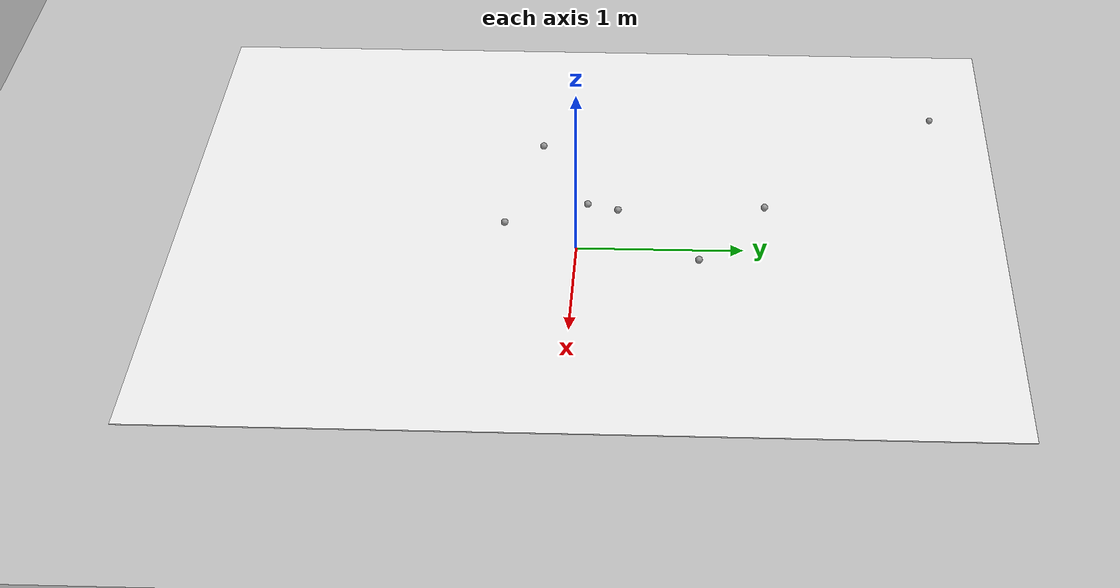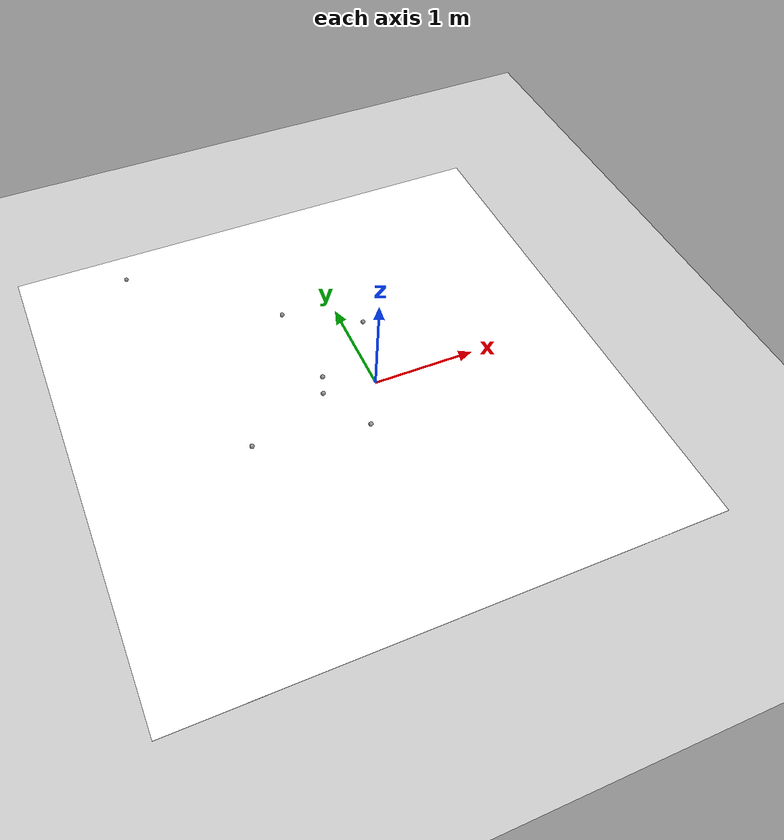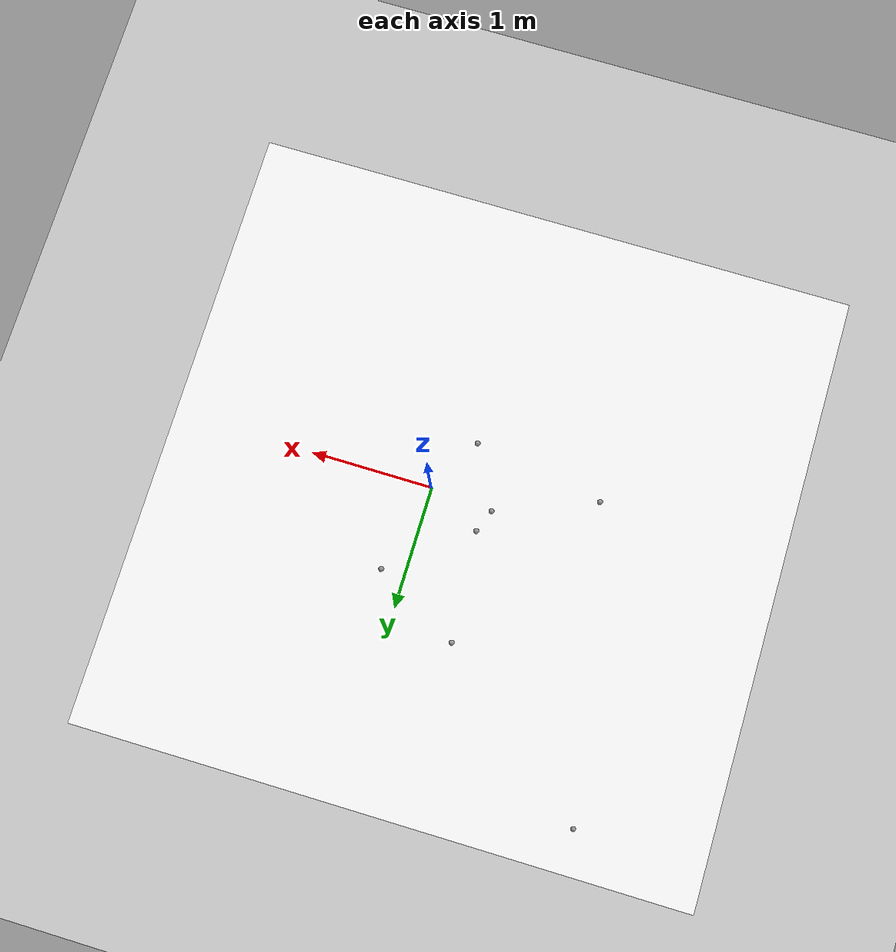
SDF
<sdf version="1.7">
 <world name="default">
  <light name="sun" type="directional">
   <pose>0 0 10 0 -0 0</pose>
   <diffuse>0.8 0.8 0.8 1</diffuse>
   <specular>0.2 0.2 0.2 1</specular>
   <attenuation>
    <range>1000</range>
    <constant>0.9</constant>
    <linear>0.01</linear>
    <quadratic>0.001</quadratic>
   </attenuation>
   <direction>-0.5 0.1 -0.9</direction>
   <spot><inner_angle>0</inner_angle><outer_angle>0</outer_angle><falloff>0</falloff></spot>
  </light>
  <model name="ground_plane">
   <static>1</static>
   <link name="link">
    <collision name="collision">
     <geometry><plane><normal>0 0 1</normal><size>100 100</size></plane></geometry>
     <surface>
      <contact><collide_bitmask>65535</collide_bitmask></contact>
      <friction><ode><mu>100</mu><mu2>50</mu2></ode></friction>
     </surface>
    </collision>
    <visual name="visual">
     <cast_shadows>0</cast_shadows>
     <geometry><plane><normal>0 0 1</normal><size>100 100</size></plane></geometry>
     <material>
      <script><uri>file://media/materials/scripts/gazebo.material</uri><name>Gazebo/Grey</name></script>
     </material>
    </visual>
   </link>
  </model>
  <gravity>0 0 -9.8</gravity>
  <magnetic_field>6e-06 2.3e-05 -4.2e-05</magnetic_field>
  <atmosphere type="adiabatic"/>
  <physics type="ode">
   <max_step_size>0.001</max_step_size>
   <real_time_factor>1</real_time_factor>
   <real_time_update_rate>1000</real_time_update_rate>
  </physics>
  <scene><ambient>0.4 0.4 0.4 1</ambient><background>0.7 0.7 0.7 1</background><shadows>1</shadows></scene>
  <audio><device>default</device></audio>
  <spherical_coordinates>
   <surface_model>EARTH_WGS84</surface_model>
   <latitude_deg>0</latitude_deg>
   <longitude_deg>0</longitude_deg>
   <elevation>0</elevation>
   <heading_deg>0</heading_deg>
  </spherical_coordinates>
  <model name="unit_sphere">
   <link name="link">
    <inertial>
     <mass>0.0027</mass>
     <inertia><ixx>0.00027</ixx><ixy>0</ixy><ixz>0</ixz><iyy>0.00027</iyy><iyz>0</iyz><izz>0.00027</izz></inertia>
    </inertial>
    <visual name="visual">
     <geometry><sphere><radius>0.02</radius></sphere></geometry>
     <material>
      <script><name>Gazebo/Grey</name><uri>file://media/materials/scripts/gazebo.material</uri></script>
      <shader type="pixel"><normal_map>__default__</normal_map></shader>
      <ambient>0.3 0.3 0.3 1</ambient>
      <diffuse>0.7 0.7 0.7 1</diffuse>
      <specular>0.01 0.01 0.01 1</specular>
      <emissive>0 0 0 1</emissive>
     </material>
    </visual>
    <collision name="collision">
     <geometry><sphere><radius>0.02</radius></sphere></geometry>
     <surface>
      <friction>
       <ode><mu>1</mu><mu2>1</mu2><fdir1>0 0 0</fdir1><slip1>0</slip1><slip2>0</slip2></ode>
       <torsional>
        <coefficient>1</coefficient>
        <patch_radius>0</patch_radius>
        <surface_radius>0</surface_radius>
        <use_patch_radius>1</use_patch_radius>
        <ode><slip>0</slip></ode>
       </torsional>
      </friction>
      <bounce><restitution_coefficient>0</restitution_coefficient><threshold>1e+06</threshold></bounce>
      <contact>
       <collide_without_contact>0</collide_without_contact>
       <collide_without_contact_bitmask>1</collide_without_contact_bitmask>
       <collide_bitmask>1</collide_bitmask>
       <ode>
        <soft_cfm>0</soft_cfm>
        <soft_erp>0.2</soft_erp>
        <kp>1e+13</kp>
        <kd>1</kd>
        <max_vel>0.01</max_vel>
        <min_depth>0</min_depth>
       </ode>
       <bullet>
        <split_impulse>1</split_impulse>
        <split_impulse_penetration_threshold>-0.01</split_impulse_penetration_threshold>
        <soft_cfm>0</soft_cfm>
        <soft_erp>0.2</soft_erp>
        <kp>1e+13</kp>
        <kd>1</kd>
       </bullet>
      </contact>
     </surface>
    </collision>
   </link>
   <static>0</static>
   <pose>-1.8007 2.21819 0.0325 0 -0 0</pose>
  </model>
  <model name="Test_floor">
   <link name="main">
    <pose>0 0 0.01 0 -0 0</pose>
    <inertial>
     <mass>1</mass>
     <inertia><ixx>1</ixx><ixy>0</ixy><ixz>0</ixz><iyy>1</iyy><iyz>0</iyz><izz>1</izz></inertia>
    </inertial>
    <visual name="main_Visual">
     <geometry><box><size>5 5 0.005</size></box></geometry>
     <material>
      <script>
       <uri>model://Floor/materials/scripts</uri>
       <uri>model://Floor/materials/textures</uri>
       <name>floor</name>
      </script>
      <shader type="pixel"><normal_map>__default__</normal_map></shader>
      <ambient>1 1 1 1</ambient>
      <diffuse>1 1 1 1</diffuse>
      <specular>0 0 0 1</specular>
      <emissive>0 0 0 1</emissive>
     </material>
    </visual>
    <collision name="main_Collision">
     <geometry><box><size>5 5 0.005</size></box></geometry>
     <surface>
      <friction>
       <ode><mu>1</mu><mu2>1</mu2><fdir1>0 0 0</fdir1><slip1>0</slip1><slip2>0</slip2></ode>
       <torsional>
        <coefficient>1</coefficient>
        <patch_radius>0</patch_radius>
        <surface_radius>0</surface_radius>
        <use_patch_radius>1</use_patch_radius>
        <ode><slip>0</slip></ode>
       </torsional>
      </friction>
      <bounce><restitution_coefficient>0</restitution_coefficient><threshold>1e+06</threshold></bounce>
      <contact>
       <collide_without_contact>0</collide_without_contact>
       <collide_without_contact_bitmask>1</collide_without_contact_bitmask>
       <collide_bitmask>1</collide_bitmask>
       <ode>
        <soft_cfm>0</soft_cfm>
        <soft_erp>0.2</soft_erp>
        <kp>1e+13</kp>
        <kd>1</kd>
        <max_vel>0.01</max_vel>
        <min_depth>0</min_depth>
       </ode>
       <bullet>
        <split_impulse>1</split_impulse>
        <split_impulse_penetration_threshold>-0.01</split_impulse_penetration_threshold>
        <soft_cfm>0</soft_cfm>
        <soft_erp>0.2</soft_erp>
        <kp>1e+13</kp>
        <kd>1</kd>
       </bullet>
      </contact>
     </surface>
    </collision>
   </link>
   <static>1</static>
   <pose>-0.342457 0.069233 0 0 -0 0</pose>
  </model>
  <model name="ping_pong_ball">
   <link name="link">
    <inertial>
     <mass>0.0027</mass>
     <inertia><ixx>0.00027</ixx><ixy>0</ixy><ixz>0</ixz><iyy>0.00027</iyy><iyz>0</iyz><izz>0.00027</izz></inertia>
    </inertial>
    <visual name="visual">
     <geometry><sphere><radius>0.022</radius></sphere></geometry>
     <material>
      <script><name>Gazebo/Grey</name><uri>file://media/materials/scripts/gazebo.material</uri></script>
      <shader type="pixel"><normal_map>__default__</normal_map></shader>
      <ambient>0.3 0.3 0.3 1</ambient>
      <diffuse>0.7 0.7 0.7 1</diffuse>
      <specular>0.01 0.01 0.01 1</specular>
      <emissive>0 0 0 1</emissive>
     </material>
    </visual>
    <collision name="collision">
     <geometry><sphere><radius>0.022</radius></sphere></geometry>
     <surface>
      <friction>
       <ode><mu>1</mu><mu2>1</mu2><fdir1>0 0 0</fdir1><slip1>0</slip1><slip2>0</slip2></ode>
       <torsional>
        <coefficient>1</coefficient>
        <patch_radius>0</patch_radius>
        <surface_radius>0</surface_radius>
        <use_patch_radius>1</use_patch_radius>
        <ode><slip>0</slip></ode>
       </torsional>
      </friction>
      <bounce><restitution_coefficient>0</restitution_coefficient><threshold>1e+06</threshold></bounce>
      <contact>
       <collide_without_contact>0</collide_without_contact>
       <collide_without_contact_bitmask>1</collide_without_contact_bitmask>
       <collide_bitmask>1</collide_bitmask>
       <ode>
        <soft_cfm>0</soft_cfm>
        <soft_erp>0.2</soft_erp>
        <kp>1e+13</kp>
        <kd>1</kd>
        <max_vel>0.01</max_vel>
        <min_depth>0</min_depth>
       </ode>
       <bullet>
        <split_impulse>1</split_impulse>
        <split_impulse_penetration_threshold>-0.01</split_impulse_penetration_threshold>
        <soft_cfm>0</soft_cfm>
        <soft_erp>0.2</soft_erp>
        <kp>1e+13</kp>
        <kd>1</kd>
       </bullet>
      </contact>
     </surface>
    </collision>
   </link>
   <static>0</static>
   <pose>-0.51434 0.048298 0.0345 0.14066 -0.93025 2.60829</pose>
  </model>
  <model name="ping_pong_ball_0">
   <link name="link">
    <inertial>
     <mass>0.0027</mass>
     <inertia><ixx>0.00027</ixx><ixy>0</ixy><ixz>0</ixz><iyy>0.00027</iyy><iyz>0</iyz><izz>0.00027</izz></inertia>
    </inertial>
    <visual name="visual">
     <geometry><sphere><radius>0.022</radius></sphere></geometry>
     <material>
      <script><name>Gazebo/Grey</name><uri>file://media/materials/scripts/gazebo.material</uri></script>
      <shader type="pixel"><normal_map>__default__</normal_map></shader>
      <ambient>0.3 0.3 0.3 1</ambient>
      <diffuse>0.7 0.7 0.7 1</diffuse>
      <specular>0.01 0.01 0.01 1</specular>
      <emissive>0 0 0 1</emissive>
     </material>
    </visual>
    <collision name="collision">
     <geometry><sphere><radius>0.022</radius></sphere></geometry>
     <surface>
      <friction>
       <ode><mu>1</mu><mu2>1</mu2><fdir1>0 0 0</fdir1><slip1>0</slip1><slip2>0</slip2></ode>
       <torsional>
        <coefficient>1</coefficient>
        <patch_radius>0</patch_radius>
        <surface_radius>0</surface_radius>
        <use_patch_radius>1</use_patch_radius>
        <ode><slip>0</slip></ode>
       </torsional>
      </friction>
      <bounce><restitution_coefficient>0</restitution_coefficient><threshold>1e+06</threshold></bounce>
      <contact>
       <collide_without_contact>0</collide_without_contact>
       <collide_without_contact_bitmask>1</collide_without_contact_bitmask>
       <collide_bitmask>1</collide_bitmask>
       <ode>
        <soft_cfm>0</soft_cfm>
        <soft_erp>0.2</soft_erp>
        <kp>1e+13</kp>
        <kd>1</kd>
        <max_vel>0.01</max_vel>
        <min_depth>0</min_depth>
       </ode>
       <bullet>
        <split_impulse>1</split_impulse>
        <split_impulse_penetration_threshold>-0.01</split_impulse_penetration_threshold>
        <soft_cfm>0</soft_cfm>
        <soft_erp>0.2</soft_erp>
        <kp>1e+13</kp>
        <kd>1</kd>
       </bullet>
      </contact>
     </surface>
    </collision>
   </link>
   <static>0</static>
   <pose>0.187418 0.737603 0.0345 0 -0 0</pose>
  </model>
  <model name="ping_pong_ball_1">
   <link name="link">
    <inertial>
     <mass>0.0027</mass>
     <inertia><ixx>0.00027</ixx><ixy>0</ixy><ixz>0</ixz><iyy>0.00027</iyy><iyz>0</iyz><izz>0.00027</izz></inertia>
    </inertial>
    <visual name="visual">
     <geometry><sphere><radius>0.022</radius></sphere></geometry>
     <material>
      <script><name>Gazebo/Grey</name><uri>file://media/materials/scripts/gazebo.material</uri></script>
      <shader type="pixel"><normal_map>__default__</normal_map></shader>
      <ambient>0.3 0.3 0.3 1</ambient>
      <diffuse>0.7 0.7 0.7 1</diffuse>
      <specular>0.01 0.01 0.01 1</specular>
      <emissive>0 0 0 1</emissive>
     </material>
    </visual>
    <collision name="collision">
     <geometry><sphere><radius>0.022</radius></sphere></geometry>
     <surface>
      <friction>
       <ode><mu>1</mu><mu2>1</mu2><fdir1>0 0 0</fdir1><slip1>0</slip1><slip2>0</slip2></ode>
       <torsional>
        <coefficient>1</coefficient>
        <patch_radius>0</patch_radius>
        <surface_radius>0</surface_radius>
        <use_patch_radius>1</use_patch_radius>
        <ode><slip>0</slip></ode>
       </torsional>
      </friction>
      <bounce><restitution_coefficient>0</restitution_coefficient><threshold>1e+06</threshold></bounce>
      <contact>
       <collide_without_contact>0</collide_without_contact>
       <collide_without_contact_bitmask>1</collide_without_contact_bitmask>
       <collide_bitmask>1</collide_bitmask>
       <ode>
        <soft_cfm>0</soft_cfm>
        <soft_erp>0.2</soft_erp>
        <kp>1e+13</kp>
        <kd>1</kd>
        <max_vel>0.01</max_vel>
        <min_depth>0</min_depth>
       </ode>
       <bullet>
        <split_impulse>1</split_impulse>
        <split_impulse_penetration_threshold>-0.01</split_impulse_penetration_threshold>
        <soft_cfm>0</soft_cfm>
        <soft_erp>0.2</soft_erp>
        <kp>1e+13</kp>
        <kd>1</kd>
       </bullet>
      </contact>
     </surface>
    </collision>
   </link>
   <static>0</static>
   <pose>-0.444462 0.235935 0.0345 0 -0 0</pose>
  </model>
  <model name="ping_pong_ball_2">
   <link name="link">
    <inertial>
     <mass>0.0027</mass>
     <inertia><ixx>0.00027</ixx><ixy>0</ixy><ixz>0</ixz><iyy>0.00027</iyy><iyz>0</iyz><izz>0.00027</izz></inertia>
    </inertial>
    <visual name="visual">
     <geometry><sphere><radius>0.022</radius></sphere></geometry>
     <material>
      <script><name>Gazebo/Grey</name><uri>file://media/materials/scripts/gazebo.material</uri></script>
      <shader type="pixel"><normal_map>__default__</normal_map></shader>
      <ambient>0.3 0.3 0.3 1</ambient>
      <diffuse>0.7 0.7 0.7 1</diffuse>
      <specular>0.01 0.01 0.01 1</specular>
      <emissive>0 0 0 1</emissive>
     </material>
    </visual>
    <collision name="collision">
     <geometry><sphere><radius>0.022</radius></sphere></geometry>
     <surface>
      <friction>
       <ode><mu>1</mu><mu2>1</mu2><fdir1>0 0 0</fdir1><slip1>0</slip1><slip2>0</slip2></ode>
       <torsional>
        <coefficient>1</coefficient>
        <patch_radius>0</patch_radius>
        <surface_radius>0</surface_radius>
        <use_patch_radius>1</use_patch_radius>
        <ode><slip>0</slip></ode>
       </torsional>
      </friction>
      <bounce><restitution_coefficient>0</restitution_coefficient><threshold>1e+06</threshold></bounce>
      <contact>
       <collide_without_contact>0</collide_without_contact>
       <collide_without_contact_bitmask>1</collide_without_contact_bitmask>
       <collide_bitmask>1</collide_bitmask>
       <ode>
        <soft_cfm>0</soft_cfm>
        <soft_erp>0.2</soft_erp>
        <kp>1e+13</kp>
        <kd>1</kd>
        <max_vel>0.01</max_vel>
        <min_depth>0</min_depth>
       </ode>
       <bullet>
        <split_impulse>1</split_impulse>
        <split_impulse_penetration_threshold>-0.01</split_impulse_penetration_threshold>
        <soft_cfm>0</soft_cfm>
        <soft_erp>0.2</soft_erp>
        <kp>1e+13</kp>
        <kd>1</kd>
       </bullet>
      </contact>
     </surface>
    </collision>
   </link>
   <static>0</static>
   <pose>-0.254069 -0.447088 0.0345 0 -0 0</pose>
  </model>
  <model name="ping_pong_ball_3">
   <link name="link">
    <inertial>
     <mass>0.0027</mass>
     <inertia><ixx>0.00027</ixx><ixy>0</ixy><ixz>0</ixz><iyy>0.00027</iyy><iyz>0</iyz><izz>0.00027</izz></inertia>
    </inertial>
    <visual name="visual">
     <geometry><sphere><radius>0.022</radius></sphere></geometry>
     <material>
      <script><name>Gazebo/Grey</name><uri>file://media/materials/scripts/gazebo.material</uri></script>
      <shader type="pixel"><normal_map>__default__</normal_map></shader>
      <ambient>0.3 0.3 0.3 1</ambient>
      <diffuse>0.7 0.7 0.7 1</diffuse>
      <specular>0.01 0.01 0.01 1</specular>
      <emissive>0 0 0 1</emissive>
     </material>
    </visual>
    <collision name="collision">
     <geometry><sphere><radius>0.022</radius></sphere></geometry>
     <surface>
      <friction>
       <ode><mu>1</mu><mu2>1</mu2><fdir1>0 0 0</fdir1><slip1>0</slip1><slip2>0</slip2></ode>
       <torsional>
        <coefficient>1</coefficient>
        <patch_radius>0</patch_radius>
        <surface_radius>0</surface_radius>
        <use_patch_radius>1</use_patch_radius>
        <ode><slip>0</slip></ode>
       </torsional>
      </friction>
      <bounce><restitution_coefficient>0</restitution_coefficient><threshold>1e+06</threshold></bounce>
      <contact>
       <collide_without_contact>0</collide_without_contact>
       <collide_without_contact_bitmask>1</collide_without_contact_bitmask>
       <collide_bitmask>1</collide_bitmask>
       <ode>
        <soft_cfm>0</soft_cfm>
        <soft_erp>0.2</soft_erp>
        <kp>1e+13</kp>
        <kd>1</kd>
        <max_vel>0.01</max_vel>
        <min_depth>0</min_depth>
       </ode>
       <bullet>
        <split_impulse>1</split_impulse>
        <split_impulse_penetration_threshold>-0.01</split_impulse_penetration_threshold>
        <soft_cfm>0</soft_cfm>
        <soft_erp>0.2</soft_erp>
        <kp>1e+13</kp>
        <kd>1</kd>
       </bullet>
      </contact>
     </surface>
    </collision>
   </link>
   <static>0</static>
   <pose>-1.3207 -0.266759 0.0345 0 -0 0</pose>
  </model>
  <model name="ping_pong_ball_4">
   <link name="link">
    <inertial>
     <mass>0.0027</mass>
     <inertia><ixx>0.00027</ixx><ixy>0</ixy><ixz>0</ixz><iyy>0.00027</iyy><iyz>0</iyz><izz>0.00027</izz></inertia>
    </inertial>
    <visual name="visual">
     <geometry><sphere><radius>0.022</radius></sphere></geometry>
     <material>
      <script><name>Gazebo/Grey</name><uri>file://media/materials/scripts/gazebo.material</uri></script>
      <shader type="pixel"><normal_map>__default__</normal_map></shader>
      <ambient>0.3 0.3 0.3 1</ambient>
      <diffuse>0.7 0.7 0.7 1</diffuse>
      <specular>0.01 0.01 0.01 1</specular>
      <emissive>0 0 0 1</emissive>
     </material>
    </visual>
    <collision name="collision">
     <geometry><sphere><radius>0.022</radius></sphere></geometry>
     <surface>
      <friction>
       <ode><mu>1</mu><mu2>1</mu2><fdir1>0 0 0</fdir1><slip1>0</slip1><slip2>0</slip2></ode>
       <torsional>
        <coefficient>1</coefficient>
        <patch_radius>0</patch_radius>
        <surface_radius>0</surface_radius>
        <use_patch_radius>1</use_patch_radius>
        <ode><slip>0</slip></ode>
       </torsional>
      </friction>
      <bounce><restitution_coefficient>0</restitution_coefficient><threshold>1e+06</threshold></bounce>
      <contact>
       <collide_without_contact>0</collide_without_contact>
       <collide_without_contact_bitmask>1</collide_without_contact_bitmask>
       <collide_bitmask>1</collide_bitmask>
       <ode>
        <soft_cfm>0</soft_cfm>
        <soft_erp>0.2</soft_erp>
        <kp>1e+13</kp>
        <kd>1</kd>
        <max_vel>0.01</max_vel>
        <min_depth>0</min_depth>
       </ode>
       <bullet>
        <split_impulse>1</split_impulse>
        <split_impulse_penetration_threshold>-0.01</split_impulse_penetration_threshold>
        <soft_cfm>0</soft_cfm>
        <soft_erp>0.2</soft_erp>
        <kp>1e+13</kp>
        <kd>1</kd>
       </bullet>
      </contact>
     </surface>
    </collision>
   </link>
   <static>0</static>
   <pose>-0.510781 1.13344 0.0345 0 -0 0</pose>
  </model>
 </world>
</sdf>
